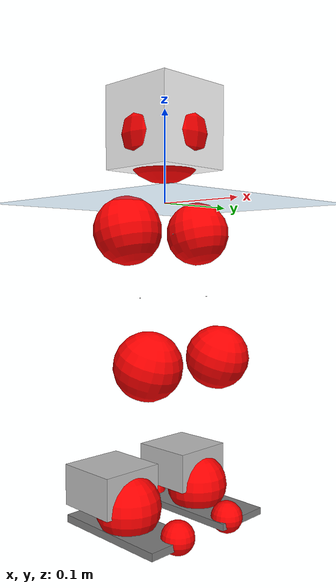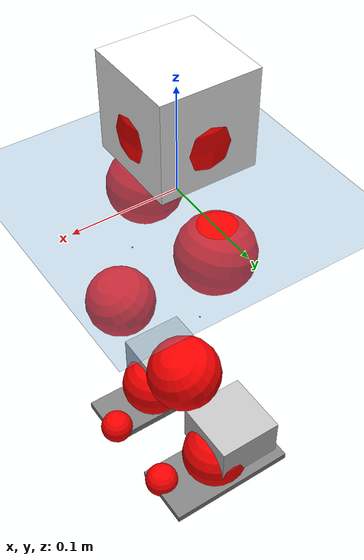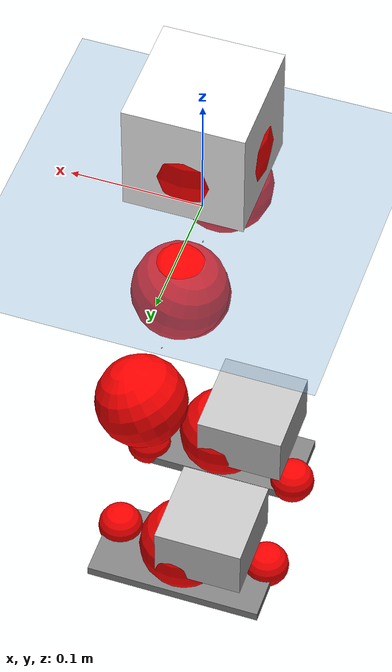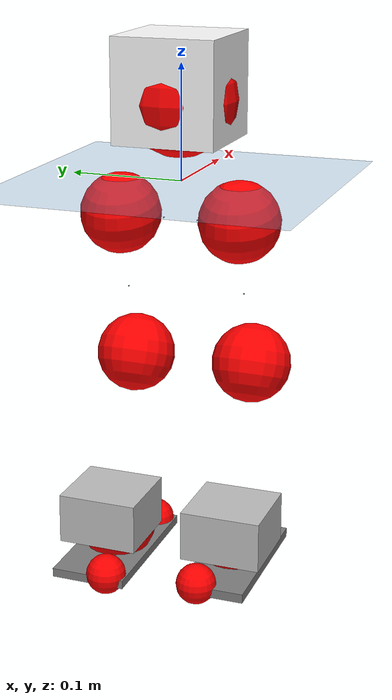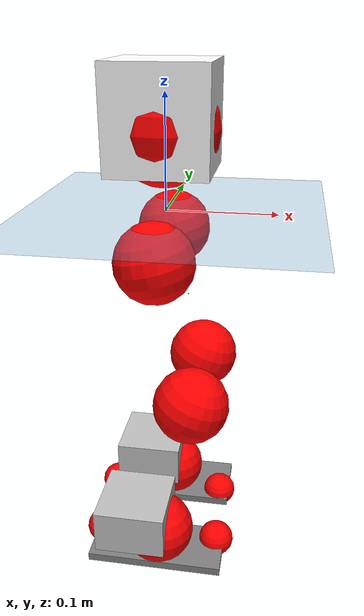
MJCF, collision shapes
<mujoco model="pi_12dof_release_v1">
  <compiler angle="radian" assetdir="assets" balanceinertia="true" inertiafromgeom="false"/>

  <option timestep="0.005" density="1.2" viscosity="2e-05"/>

  <size nkey="1"/>

  <visual>
    <quality shadowsize="8192"/>
    <map shadowclip="0.5"/>
  </visual>

  <default>
    <default class="/">
      <joint armature="0.01" damping="0.01" frictionloss="0.01"/>
      <geom contype="0" conaffinity="0" group="1" solref="-1000 -80"/>
      <site size="0.01 0.005 0.005" group="5"/>
      <general forcelimited="true" biastype="affine" gainprm="20" biasprm="0 -20 -0.5"/>
      <default class="foot">
        <geom size="0.0845 0.036 0.005" type="box" condim="6" group="4" priority="1" friction="0.9 0.2 0.2" solimp="0.015 1 0.005"/>
      </default>
      <default class="reward_collision_sphere">
        <geom group="5" rgba="1 0 0 1"/>
      </default>
    </default>
  </default>

  <asset>
    <texture type="skybox" colorspace="auto" name="//unnamed_texture_0" builtin="gradient" rgb1="0.95 0.95 0.95" rgb2="0.95 0.95 0.95" width="100" height="600"/>
    <texture type="2d" colorspace="auto" name="texplane" builtin="checker" rgb1="0.345 0.575 0.748" rgb2="0.345 0.575 0.748" markrgb="1 1 1" width="512" height="512"/>
    <material name="MatPlane" class="/" texture="texplane" texuniform="true" texrepeat="2 2" specular="0.9"/>
    <mesh name="baselink_1" class="/" file="baselink_1.STL"/>
    <mesh name="r_hip_pitch_link" class="/" file="r_hip_pitch_link.STL"/>
    <mesh name="r_hip_roll_link" class="/" file="r_hip_roll_link.STL"/>
    <mesh name="r_thigh_link" class="/" file="r_thigh_link.STL"/>
    <mesh name="r_calf_link" class="/" file="r_calf_link.STL"/>
    <mesh name="r_ankle_pitch_link" class="/" file="r_ankle_pitch_link.STL"/>
    <mesh name="r_ankle_roll_link" class="/" file="r_ankle_roll_link.STL"/>
    <mesh name="l_hip_pitch_link" class="/" file="l_hip_pitch_link.STL"/>
    <mesh name="l_hip_roll_link" class="/" file="l_hip_roll_link.STL"/>
    <mesh name="l_thigh_link" class="/" file="l_thigh_link.STL"/>
    <mesh name="l_calf_link" class="/" file="l_calf_link.STL"/>
    <mesh name="l_ankle_pitch_link" class="/" file="l_ankle_pitch_link.STL"/>
    <mesh name="l_ankle_roll_link" class="/" file="l_ankle_roll_link.STL"/>
  </asset>

  <worldbody>
    <geom name="floor" class="/" size="100 100 0.125" type="plane" group="0" material="MatPlane"/>
    <light name="toplight_shadow" class="/" pos="0 0 5" dir="0.0990148 0.0990148 -0.990148" type="directional" ambient="0.04 0.04 0.04" diffuse="0.55 0.55 0.55" specular="0.12 0.12 0.12"/>
    <light name="toplight_fill" class="/" pos="0 0 5" dir="0.0990148 0.0990148 -0.990148" type="directional" castshadow="false" ambient="0.04 0.04 0.04" diffuse="0.3 0.3 0.3" specular="0.08 0.08 0.08"/>
    <body name="trunk" pos="-0.000838846 0.000529231 -0.00126268" quat="1 -0.000840733 6.85452e-05 0.00028509">
      <inertial pos="0.00111783 0.00174366 0.0404121" quat="0.688515 0.0116064 0.0113816 0.72504" mass="1.49467" diaginertia="0.00611584 0.0021767 0.00454923"/>
      <joint name="//unnamed_joint_0" type="free"/>
      <geom name="//unnamed_geom_1" class="/" type="mesh" density="0" rgba="1 1 1 1" mesh="baselink_1"/>
      <geom name="//unnamed_geom_2" class="/" size="0.0445834 0.0445834 0.0445834" pos="0 0 0.0814118" type="box" rgba="1 1 1 1"/>
      <geom name="//unnamed_geom_3" class="reward_collision_sphere" size="0.0490418" pos="0 0 0.0712353"/>
      <site name="imu" class="/" pos="-0.00056295 0.0139187 -0.0132121" size="0.00891669"/>
      <camera name="track" class="/" pos="0 -1.50213 0" quat="0.707107 0.707107 0 0" mode="trackcom"/>
      <camera name="ego_camera" class="/" pos="0.067972 0 0.183176" quat="-0.5 -0.5 0.5 0.5"/>
      <body name="r_hip_pitch_link" pos="0.00173623 -0.0147422 -0.0320066" quat="0.992199 2.7277e-05 -0.124668 1.06308e-05">
        <inertial pos="-0.00123299 -0.0410109 -0.00158901" quat="-0.0253201 0.704833 -0.0310698 0.70824" mass="0.254234" diaginertia="6.6287e-05 2.23321e-05 8.73015e-05"/>
        <joint name="r_hip_pitch_joint" class="/" pos="0 0 0" axis="-0.00136406 -0.999997 0.00189415" range="-1.74422 1.23268" armature="0.00923594" damping="0.00340111" frictionloss="0.00871111"/>
        <geom name="//unnamed_geom_4" class="/" type="mesh" density="0" rgba="0.75294 0.75294 0.75294 1" mesh="r_hip_pitch_link"/>
        <geom name="//unnamed_geom_5" class="/" size="0.000445834 0.000445834 0.000445834" type="box" rgba="0.75294 0.75294 0.75294 1"/>
        <body name="r_hip_roll_link" pos="-0.000994564 -0.0386229 0.00235009" quat="1 -0.000105636 -6.89698e-05 3.3522e-05">
          <inertial pos="-0.0035886 -0.000464304 -0.0626767" quat="0.710594 -0.0788073 -0.0808732 0.694482" mass="0.268989" diaginertia="0.000198744 6.4526e-05 0.000131901"/>
          <joint name="r_hip_roll_joint" class="/" pos="0 0 0" axis="-0.999903 0.0045395 0.0131506" range="-0.118053 0.484673" armature="0.00845269" damping="0.00857545" frictionloss="0.0101733"/>
          <geom name="//unnamed_geom_6" class="/" type="mesh" density="0" rgba="0.75294 0.75294 0.75294 1" mesh="r_hip_roll_link"/>
          <geom name="//unnamed_geom_7" class="/" size="0.000445834 0.000445834 0.000445834" type="box" rgba="0.75294 0.75294 0.75294 1"/>
          <geom name="//unnamed_geom_8" class="reward_collision_sphere" size="0.0356668"/>
          <body name="r_thigh_link" pos="-5.18813e-06 0.000987827 -0.0704119" quat="1 -9.5826e-05 -0.000123819 4.73655e-05">
            <inertial pos="-0.000285575 -0.000801741 -0.0480886" quat="0.739543 0.673105 0.00110635 0.00205016" mass="0.0809341" diaginertia="7.5155e-05 2.25041e-05 6.32818e-05"/>
            <joint name="r_thigh_joint" class="/" pos="0 0 0" axis="0.00351514 -0.000410086 -0.999994" stiffness="0.00900605" range="-0.353733 0.639746" armature="0.00853107" damping="0.0187593" frictionloss="0.00908775"/>
            <geom name="//unnamed_geom_9" class="/" type="mesh" density="0" rgba="0.75294 0.75294 0.75294 1" mesh="r_thigh_link"/>
            <geom name="//unnamed_geom_10" class="/" size="0.000445834 0.000445834 0.000445834" type="box" rgba="0.75294 0.75294 0.75294 1"/>
            <body name="r_calf_link" pos="-0.00234188 -0.00305205 -0.070122" quat="0.947668 0.000420125 0.319256 -0.000294159">
              <inertial pos="-0.00280402 -0.000638254 -0.0701395" quat="0.999978 -0.0043991 0.00471754 0.00160668" mass="0.575794" diaginertia="0.00211102 0.000824777 0.000185818"/>
              <joint name="r_calf_joint" class="/" pos="0 0 0" axis="-0.0045033 -0.999981 -0.00425483" range="-1.65879 0.701036" armature="0.00901266" damping="0.00532703" frictionloss="0.00845026"/>
              <geom name="//unnamed_geom_11" class="/" type="mesh" density="0" rgba="0.75294 0.75294 0.75294 1" mesh="r_calf_link"/>
              <geom name="//unnamed_geom_12" class="/" size="0.000445834 0.000445834 0.000445834" type="box" rgba="0.75294 0.75294 0.75294 1"/>
              <geom name="//unnamed_geom_13" class="reward_collision_sphere" size="0.0356668"/>
              <body name="r_ankle_pitch_link" pos="0.000915781 -0.00136807 -0.146098" quat="0.980112 -0.00114833 -0.198442 -0.00037183">
                <inertial pos="0.00185273 0.00321791 -0.00189271" quat="0.00491049 0.704236 -0.0024991 0.709945" mass="0.129329" diaginertia="0.000187184 5.14962e-05 0.000134928"/>
                <joint name="r_ankle_pitch_joint" class="/" pos="0 0 0" axis="-0.013292 -0.99991 0.00174559" range="-1.35247 0.495761" armature="0.00809471" damping="0.0122671" frictionloss="0.00868813"/>
                <geom name="//unnamed_geom_14" class="/" type="mesh" density="0" rgba="0.75294 0.75294 0.75294 1" mesh="r_ankle_pitch_link"/>
                <geom name="//unnamed_geom_15" class="/" size="0.0347751 0.0356668 0.0222917" type="box" rgba="0.75294 0.75294 0.75294 1"/>
                <body name="r_ankle_roll_link" pos="0.068033 0.00379356 0.000625186" quat="1 -2.25439e-05 -1.351e-05 5.92662e-05">
                  <inertial pos="-0.0229511 -0.00181356 -0.0123262" quat="0.562665 0.429558 0.435334 0.556212" mass="0.361305" diaginertia="0.000683925 0.000247306 0.000291193"/>
                  <joint name="r_ankle_roll_joint" class="/" pos="0 0 0" axis="-0.999988 0.000615897 -0.00480407" stiffness="0.00551889" range="-0.165636 0.20781" armature="0.00794484" damping="0" frictionloss="0.0081487"/>
                  <geom name="//unnamed_geom_16" class="/" type="mesh" density="0" rgba="0.75294 0.75294 0.75294 1" mesh="r_ankle_roll_link"/>
                  <geom name="//unnamed_geom_17" class="/" type="mesh" rgba="0.75294 0.75294 0.75294 1" mesh="r_ankle_roll_link"/>
                  <geom name="right_foot" class="foot" size="0.0680153 0.0292944 0.004194" pos="-0.046221 0 -0.0447765"/>
                  <geom name="//unnamed_geom_19" class="reward_collision_sphere" size="0.0356668" pos="-0.0453147 0 -0.0203529"/>
                  <geom name="//unnamed_geom_20" class="reward_collision_sphere" size="0.0178334" pos="0.0135944 0.0150213 -0.0407059"/>
                  <geom name="//unnamed_geom_21" class="reward_collision_sphere" size="0.0178334" pos="-0.108755 0.0150213 -0.0407059"/>
                  <site name="right_foot" class="foot" pos="-0.046221 0 -0.0447765" size="0.00891669"/>
                </body>
              </body>
            </body>
          </body>
        </body>
      </body>
      <body name="l_hip_pitch_link" pos="-0.00141361 0.0147794 -0.0312736" quat="0.992244 0.000366999 -0.124306 0.000205726">
        <inertial pos="-0.0013604 0.0385559 -0.000975976" quat="-0.0369301 0.712515 0.0302367 0.700032" mass="0.269907" diaginertia="7.33808e-05 2.48669e-05 0.000102561"/>
        <joint name="l_hip_pitch_joint" class="/" pos="0 0 0" axis="0.00152484 0.999924 0.0122095" range="-1.27381 1.70074" armature="0.00898162" damping="0" frictionloss="0.0101035"/>
        <geom name="//unnamed_geom_22" class="/" type="mesh" density="0" rgba="0.75294 0.75294 0.75294 1" mesh="l_hip_pitch_link"/>
        <geom name="//unnamed_geom_23" class="/" size="0.000445834 0.000445834 0.000445834" type="box" rgba="0.75294 0.75294 0.75294 1"/>
        <body name="l_hip_roll_link" pos="0.000455549 0.0397761 0.00104098" quat="0.999999 0.00107084 0.000711391 -0.000166679">
          <inertial pos="-0.000697432 -0.00279943 -0.0629821" quat="0.699139 -0.075305 -0.0779695 0.706721" mass="0.28019" diaginertia="0.00020962 6.62312e-05 0.000146177"/>
          <joint name="l_hip_roll_joint" class="/" pos="0 0 0" axis="-0.999995 0.00240979 0.00191474" stiffness="0.000333886" range="-0.504177 0.058235" armature="0.00780362" damping="0.0184065" frictionloss="0.00892052"/>
          <geom name="//unnamed_geom_24" class="/" type="mesh" density="0" rgba="0.75294 0.75294 0.75294 1" mesh="l_hip_roll_link"/>
          <geom name="//unnamed_geom_25" class="/" size="0.000445834 0.000445834 0.000445834" type="box" rgba="0.75294 0.75294 0.75294 1"/>
          <geom name="//unnamed_geom_26" class="reward_collision_sphere" size="0.0356668"/>
          <body name="l_thigh_link" pos="-0.00316889 -0.000624719 -0.0720602" quat="0.999999 0.000988635 -2.15803e-05 0.000816622">
            <inertial pos="-0.000992793 0.00124465 -0.0495855" quat="0.670967 0.741445 -0.00786476 0.00116831" mass="0.0762812" diaginertia="7.37083e-05 2.11196e-05 6.26899e-05"/>
            <joint name="l_thigh_joint" class="/" pos="0 0 0" axis="0.00236326 -0.000170165 -0.999997" stiffness="0.00112786" range="-0.585652 0.313984" armature="0.0086157" damping="0" frictionloss="0.00938199"/>
            <geom name="//unnamed_geom_27" class="/" type="mesh" density="0" rgba="0.75294 0.75294 0.75294 1" mesh="l_thigh_link"/>
            <geom name="//unnamed_geom_28" class="/" size="0.000445834 0.000445834 0.000445834" type="box" rgba="0.75294 0.75294 0.75294 1"/>
            <body name="l_calf_link" pos="-0.000536248 -9.71235e-05 -0.0698976" quat="0.947677 8.74697e-05 0.31923 0.000372299">
              <inertial pos="-0.0024659 -0.000795961 -0.0697963" quat="0.999894 0.00339853 -0.00185917 0.0140687" mass="0.582001" diaginertia="0.00223149 0.000847279 0.000199942"/>
              <joint name="l_calf_joint" class="/" pos="0 0 0" axis="0.000337968 0.999881 -0.0154393" range="-0.694865 1.68952" armature="0.00919212" damping="0" frictionloss="0.0101838"/>
              <geom name="//unnamed_geom_29" class="/" type="mesh" density="0" rgba="0.75294 0.75294 0.75294 1" mesh="l_calf_link"/>
              <geom name="//unnamed_geom_30" class="/" size="0.000445834 0.000445834 0.000445834" type="box" rgba="0.75294 0.75294 0.75294 1"/>
              <geom name="//unnamed_geom_31" class="reward_collision_sphere" size="0.0356668"/>
              <body name="l_ankle_pitch_link" pos="-0.000374912 0.00249379 -0.145254" quat="0.980037 -1.95792e-05 -0.198813 -0.00030528">
                <inertial pos="0.00701174 -0.00372057 -0.00201503" quat="-0.00983975 0.699225 0.00691578 0.714801" mass="0.121303" diaginertia="0.000190431 5.194e-05 0.000129344"/>
                <joint name="l_ankle_pitch_joint" class="/" pos="0 0 0" axis="-0.00273209 0.999995 0.00150501" stiffness="0.0101956" range="-0.564698 1.27705" armature="0.00779839" damping="0.00630787" frictionloss="0.00775226"/>
                <geom name="//unnamed_geom_32" class="/" type="mesh" density="0" rgba="0.75294 0.75294 0.75294 1" mesh="l_ankle_pitch_link"/>
                <geom name="//unnamed_geom_33" class="/" size="0.0347751 0.0356668 0.0222917" type="box" rgba="0.75294 0.75294 0.75294 1"/>
                <body name="l_ankle_roll_link" pos="0.0666923 0.0030547 -0.00216078" quat="1 0.000279708 6.08473e-05 -4.8336e-05">
                  <inertial pos="-0.0212958 -0.000421889 -0.0143215" quat="0.555776 0.432501 0.441897 0.555683" mass="0.380995" diaginertia="0.000720432 0.000263633 0.000313041"/>
                  <joint name="l_ankle_roll_joint" class="/" pos="0 0 0" axis="-1 0.000536383 7.02686e-05" range="-0.161597 0.139102" armature="0.0085597" damping="0" frictionloss="0.00778881"/>
                  <geom name="//unnamed_geom_34" class="/" type="mesh" density="0" rgba="0.75294 0.75294 0.75294 1" mesh="l_ankle_roll_link"/>
                  <geom name="//unnamed_geom_35" class="/" type="mesh" rgba="0.75294 0.75294 0.75294 1" mesh="l_ankle_roll_link"/>
                  <geom name="left_foot" class="foot" size="0.0702909 0.0337066 0.00393939" pos="-0.046221 0 -0.0447765"/>
                  <geom name="//unnamed_geom_37" class="reward_collision_sphere" size="0.0356668" pos="-0.0453147 0 -0.0203529"/>
                  <geom name="//unnamed_geom_38" class="reward_collision_sphere" size="0.0178334" pos="0.0135944 -0.0150213 -0.0407059"/>
                  <geom name="//unnamed_geom_39" class="reward_collision_sphere" size="0.0178334" pos="-0.108755 -0.0150213 -0.0407059"/>
                  <site name="left_foot" class="foot" pos="-0.046221 0 -0.0447765" size="0.00891669"/>
                </body>
              </body>
            </body>
          </body>
        </body>
      </body>
    </body>
  </worldbody>

  <contact>
    <pair class="/" geom1="floor" geom2="right_foot" name="//unnamed_contact_1"/>
    <pair class="/" geom1="floor" geom2="left_foot" name="//unnamed_contact_0"/>
  </contact>

  <actuator>
    <general name="r_hip_pitch_joint" class="/" joint="r_hip_pitch_joint" forcerange="-20.3503 20.3503" gainprm="17.5878" biasprm="0 -17.5878 -0.424987"/>
    <general name="r_hip_roll_joint" class="/" joint="r_hip_roll_joint" forcerange="-18.101 18.101" gainprm="17.5878" biasprm="0 -17.5878 -0.424987"/>
    <general name="r_thigh_joint" class="/" joint="r_thigh_joint" forcerange="-18.3868 18.3868" gainprm="17.5878" biasprm="0 -17.5878 -0.424987"/>
    <general name="r_calf_joint" class="/" joint="r_calf_joint" forcerange="-19.1587 19.1587" gainprm="17.5878" biasprm="0 -17.5878 -0.424987"/>
    <general name="r_ankle_pitch_joint" class="/" joint="r_ankle_pitch_joint" forcerange="-17.0776 17.0776" gainprm="17.5878" biasprm="0 -17.5878 -0.424987"/>
    <general name="r_ankle_roll_joint" class="/" joint="r_ankle_roll_joint" forcerange="-18.0214 18.0214" gainprm="17.5878" biasprm="0 -17.5878 -0.424987"/>
    <general name="l_hip_pitch_joint" class="/" joint="l_hip_pitch_joint" forcerange="-18.5056 18.5056" gainprm="17.5878" biasprm="0 -17.5878 -0.424987"/>
    <general name="l_hip_roll_joint" class="/" joint="l_hip_roll_joint" forcerange="-18.584 18.584" gainprm="17.5878" biasprm="0 -17.5878 -0.424987"/>
    <general name="l_thigh_joint" class="/" joint="l_thigh_joint" forcerange="-20.6491 20.6491" gainprm="17.5878" biasprm="0 -17.5878 -0.424987"/>
    <general name="l_calf_joint" class="/" joint="l_calf_joint" forcerange="-19.0477 19.0477" gainprm="17.5878" biasprm="0 -17.5878 -0.424987"/>
    <general name="l_ankle_pitch_joint" class="/" joint="l_ankle_pitch_joint" forcerange="-20.5782 20.5782" gainprm="17.5878" biasprm="0 -17.5878 -0.424987"/>
    <general name="l_ankle_roll_joint" class="/" joint="l_ankle_roll_joint" forcerange="-18.4801 18.4801" gainprm="17.5878" biasprm="0 -17.5878 -0.424987"/>
  </actuator>

  <sensor>
    <gyro site="imu" name="imu_angular_velocity"/>
    <velocimeter site="imu" name="imu_linear_velocity"/>
    <framelinvel objtype="site" objname="left_foot" name="left_foot_global_linear_velocity"/>
    <framelinvel objtype="site" objname="right_foot" name="right_foot_global_linear_velocity"/>
  </sensor>

  <keyframe>
    <key name="home" qpos="0 0 0.291 1 0 0 0 0.4 0 0 -0.8 0.4 0 -0.4 0 0 0.8 -0.4 0"/>
  </keyframe>
</mujoco>
